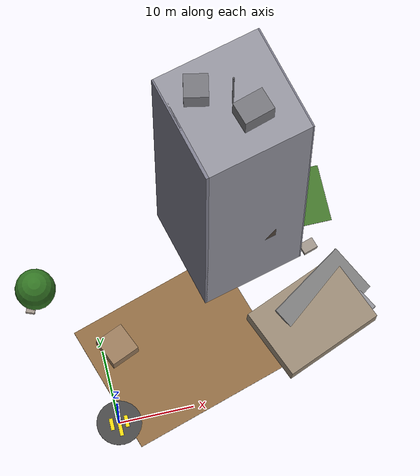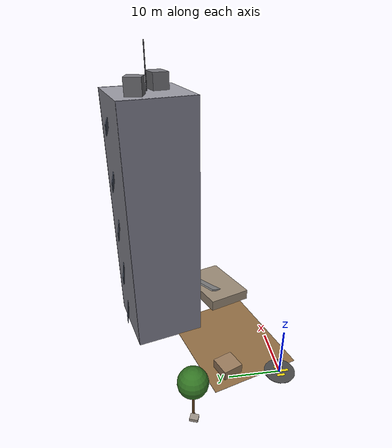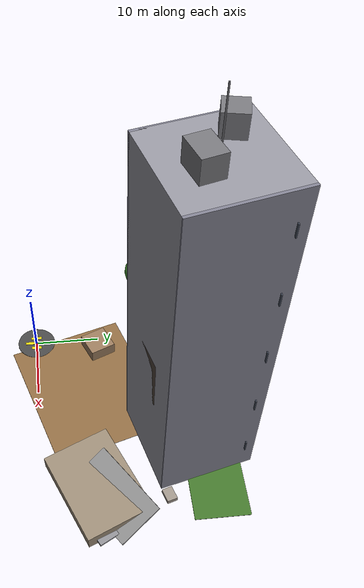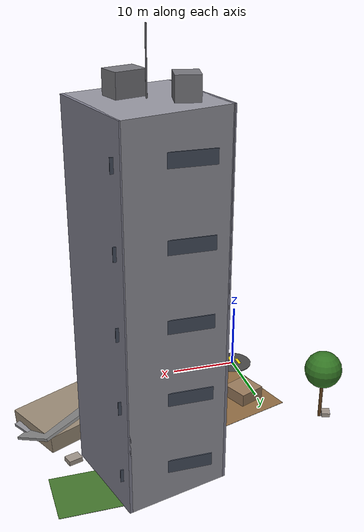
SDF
<sdf version="1.9">
 <world name="p110_world">
  <model name="grass_median">
   <static>true</static>
   <pose>28 25 0.05 0 0 0</pose>
   <link name="link">
    <visual name="v">
     <geometry><box><size>12 8 0.06</size></box></geometry>
     <material><ambient>0.22 0.38 0.14 1</ambient><diffuse>0.26 0.46 0.17 1</diffuse></material>
    </visual>
   </link>
  </model>
  <model name="dirt_blast_c">
   <static>true</static>
   <pose>10 8 0.05 0 0 0.3</pose>
   <link name="link">
    <visual name="v">
     <geometry><box><size>22 18 0.06</size></box></geometry>
     <material><ambient>0.48 0.36 0.22 1</ambient><diffuse>0.56 0.42 0.26 1</diffuse></material>
    </visual>
   </link>
  </model>
  <model name="office_tower">
   <static>true</static>
   <pose>20 22 25 0 0 0.25</pose>
   <link name="link">
    <collision name="c"><geometry><box><size>14 14 50</size></box></geometry></collision>
    <visual name="main">
     <geometry><box><size>14 14 50</size></box></geometry>
     <material>
      <ambient>0.50 0.50 0.52 1</ambient>
      <diffuse>0.58 0.58 0.62 1</diffuse>
      <specular>0.18 0.18 0.20 1</specular>
     </material>
    </visual>
    <visual name="face_e">
     <pose>7 0 0 0 0 0</pose>
     <geometry><box><size>0.4 14 50</size></box></geometry>
     <material>
      <ambient>0.44 0.44 0.48 1</ambient>
      <diffuse>0.50 0.50 0.56 1</diffuse>
      <specular>0.20 0.20 0.22 1</specular>
     </material>
    </visual>
    <visual name="face_w">
     <pose>-7 0 0 0 0 0</pose>
     <geometry><box><size>0.4 14 50</size></box></geometry>
     <material>
      <ambient>0.44 0.44 0.48 1</ambient>
      <diffuse>0.50 0.50 0.56 1</diffuse>
      <specular>0.20 0.20 0.22 1</specular>
     </material>
    </visual>
    <visual name="blast_hole">
     <pose>0 -6.5 -6 0 0 0</pose>
     <geometry><box><size>6 1 8</size></box></geometry>
     <material><ambient>0.25 0.22 0.20 1</ambient><diffuse>0.30 0.26 0.22 1</diffuse></material>
    </visual>
   </link>
  </model>
  <model name="col3_slab1">
   <static>true</static>
   <pose>30 10 1.8 0.40 0.06 0.6</pose>
   <link name="link">
    <collision name="c"><geometry><box><size>12 7 0.4</size></box></geometry></collision>
    <visual name="v">
     <geometry><box><size>12 7 0.4</size></box></geometry>
     <material><ambient>0.46 0.46 0.46 1</ambient><diffuse>0.55 0.55 0.55 1</diffuse></material>
    </visual>
   </link>
  </model>
  <model name="col3_facade">
   <static>true</static>
   <pose>32 8 0.8 1.5708 0.1 0.5</pose>
   <link name="link">
    <collision name="c"><geometry><box><size>8 0.4 5</size></box></geometry></collision>
    <visual name="v">
     <geometry><box><size>8 0.4 5</size></box></geometry>
     <material>
      <ambient>0.48 0.48 0.50 1</ambient>
      <diffuse>0.56 0.56 0.58 1</diffuse>
      <specular>0.20 0.20 0.22 1</specular>
     </material>
    </visual>
   </link>
  </model>
  <model name="col3_rubble">
   <static>true</static>
   <pose>28 8 1.2 0.05 0.04 0.4</pose>
   <link name="link">
    <collision name="c"><geometry><box><size>14 10 2.4</size></box></geometry></collision>
    <visual name="v">
     <geometry><box><size>14 10 2.4</size></box></geometry>
     <material><ambient>0.52 0.48 0.42 1</ambient><diffuse>0.60 0.54 0.46 1</diffuse></material>
    </visual>
   </link>
  </model>
  <model name="deb_c1">
   <static>true</static>
   <pose>2 10 1 0 0 0.4</pose>
   <link name="link">
    <collision name="c"><geometry><box><size>4 4 2</size></box></geometry></collision>
    <visual name="v">
     <geometry><box><size>4 4 2</size></box></geometry>
     <material><ambient>0.52 0.42 0.30 1</ambient><diffuse>0.60 0.48 0.36 1</diffuse></material>
    </visual>
   </link>
  </model>
  <model name="deb_c2">
   <static>true</static>
   <pose>-8 18 0.3 0 0 1.2</pose>
   <link name="link">
    <collision name="c"><geometry><box><size>1.5 1.2 0.6</size></box></geometry></collision>
    <visual name="v">
     <geometry><box><size>1.5 1.2 0.6</size></box></geometry>
     <material><ambient>0.55 0.52 0.48 1</ambient><diffuse>0.62 0.58 0.54 1</diffuse></material>
    </visual>
   </link>
  </model>
  <model name="deb_c4">
   <static>true</static>
   <pose>30 18 0.35 0 0 0.3</pose>
   <link name="link">
    <collision name="c"><geometry><box><size>2.0 1.5 0.7</size></box></geometry></collision>
    <visual name="v">
     <geometry><box><size>2.0 1.5 0.7</size></box></geometry>
     <material><ambient>0.55 0.52 0.48 1</ambient><diffuse>0.62 0.58 0.54 1</diffuse></material>
    </visual>
   </link>
  </model>
  <model name="tr_ns7">
   <static>true</static>
   <pose>-7 18 0 0 0 0</pose>
   <link name="link">
    <visual name="t">
     <pose>0 0 3.0 0 0 0</pose>
     <geometry><cylinder><radius>0.24</radius><length>6</length></cylinder></geometry>
     <material><ambient>0.32 0.20 0.10 1</ambient><diffuse>0.38 0.25 0.12 1</diffuse></material>
    </visual>
    <visual name="c">
     <pose>0 0 8.0 0 0 0</pose>
     <geometry><sphere><radius>2.7</radius></sphere></geometry>
     <material><ambient>0.16 0.38 0.11 1</ambient><diffuse>0.20 0.46 0.14 1</diffuse></material>
    </visual>
   </link>
  </model>
  <model name="helipad">
   <static>true</static>
   <pose>0 0 0.06 0 0 0</pose>
   <link name="link">
    <visual name="pad">
     <geometry><cylinder><radius>3</radius><length>0.12</length></cylinder></geometry>
     <material><ambient>0.22 0.22 0.22 1</ambient><diffuse>0.28 0.28 0.28 1</diffuse></material>
    </visual>
    <visual name="h_v">
     <pose>0 0 0.07 0 0 0</pose>
     <geometry><box><size>0.5 3.6 0.02</size></box></geometry>
     <material><ambient>0.95 0.85 0.05 1</ambient><diffuse>0.95 0.85 0.05 1</diffuse></material>
    </visual>
    <visual name="h_l">
     <pose>-1.0 0 0.07 0 0 0</pose>
     <geometry><box><size>0.5 1.6 0.02</size></box></geometry>
     <material><ambient>0.95 0.85 0.05 1</ambient><diffuse>0.95 0.85 0.05 1</diffuse></material>
    </visual>
    <visual name="h_r">
     <pose>1.0 0 0.07 0 0 0</pose>
     <geometry><box><size>0.5 1.6 0.02</size></box></geometry>
     <material><ambient>0.95 0.85 0.05 1</ambient><diffuse>0.95 0.85 0.05 1</diffuse></material>
    </visual>
   </link>
  </model>
  <model name="rt_otwr_hvac1">
   <static>true</static>
   <pose>22 20 51.5 0 0 0.3</pose>
   <link name="link">
    <visual name="v">
     <geometry><box><size>4 3 3</size></box></geometry>
     <material><ambient>0.38 0.38 0.40 1</ambient><diffuse>0.46 0.46 0.48 1</diffuse></material>
    </visual>
   </link>
  </model>
  <model name="rt_otwr_hvac2">
   <static>true</static>
   <pose>16 24 51.5 0 0 -0.2</pose>
   <link name="link">
    <visual name="v">
     <geometry><box><size>3 3 3</size></box></geometry>
     <material><ambient>0.38 0.38 0.40 1</ambient><diffuse>0.46 0.46 0.48 1</diffuse></material>
    </visual>
   </link>
  </model>
  <model name="rt_otwr_antenna">
   <static>true</static>
   <pose>20 22 54 0 0 0</pose>
   <link name="link">
    <visual name="v">
     <geometry><cylinder><radius>0.10</radius><length>8</length></cylinder></geometry>
     <material>
      <ambient>0.30 0.30 0.32 1</ambient>
      <diffuse>0.38 0.38 0.40 1</diffuse>
      <specular>0.40 0.40 0.42 1</specular>
     </material>
    </visual>
   </link>
  </model>
  <model name="otwr_win_n1">
   <static>true</static>
   <pose>20 29.1 5 0 0 0</pose>
   <link name="link">
    <visual name="v">
     <geometry><box><size>12 0.15 1.8</size></box></geometry>
     <material>
      <ambient>0.20 0.22 0.26 1</ambient>
      <diffuse>0.25 0.28 0.34 1</diffuse>
      <specular>0.50 0.50 0.55 1</specular>
     </material>
    </visual>
   </link>
  </model>
  <model name="otwr_win_n2">
   <static>true</static>
   <pose>20 29.1 15 0 0 0</pose>
   <link name="link">
    <visual name="v">
     <geometry><box><size>12 0.15 1.8</size></box></geometry>
     <material>
      <ambient>0.20 0.22 0.26 1</ambient>
      <diffuse>0.25 0.28 0.34 1</diffuse>
      <specular>0.50 0.50 0.55 1</specular>
     </material>
    </visual>
   </link>
  </model>
  <model name="otwr_win_n3">
   <static>true</static>
   <pose>20 29.1 25 0 0 0</pose>
   <link name="link">
    <visual name="v">
     <geometry><box><size>12 0.15 1.8</size></box></geometry>
     <material>
      <ambient>0.20 0.22 0.26 1</ambient>
      <diffuse>0.25 0.28 0.34 1</diffuse>
      <specular>0.50 0.50 0.55 1</specular>
     </material>
    </visual>
   </link>
  </model>
  <model name="otwr_win_n4">
   <static>true</static>
   <pose>20 29.1 35 0 0 0</pose>
   <link name="link">
    <visual name="v">
     <geometry><box><size>12 0.15 1.8</size></box></geometry>
     <material>
      <ambient>0.20 0.22 0.26 1</ambient>
      <diffuse>0.25 0.28 0.34 1</diffuse>
      <specular>0.50 0.50 0.55 1</specular>
     </material>
    </visual>
   </link>
  </model>
  <model name="otwr_win_n5">
   <static>true</static>
   <pose>20 29.1 45 0 0 0</pose>
   <link name="link">
    <visual name="v">
     <geometry><box><size>12 0.15 1.8</size></box></geometry>
     <material>
      <ambient>0.20 0.22 0.26 1</ambient>
      <diffuse>0.25 0.28 0.34 1</diffuse>
      <specular>0.50 0.50 0.55 1</specular>
     </material>
    </visual>
   </link>
  </model>
 </world>
</sdf>
